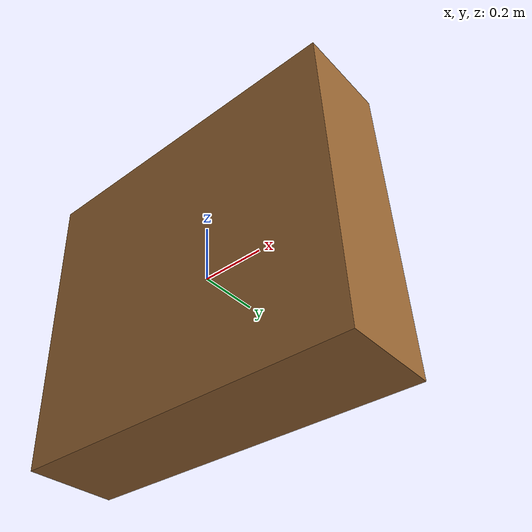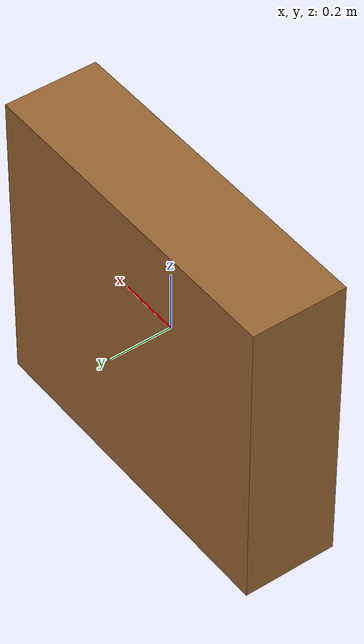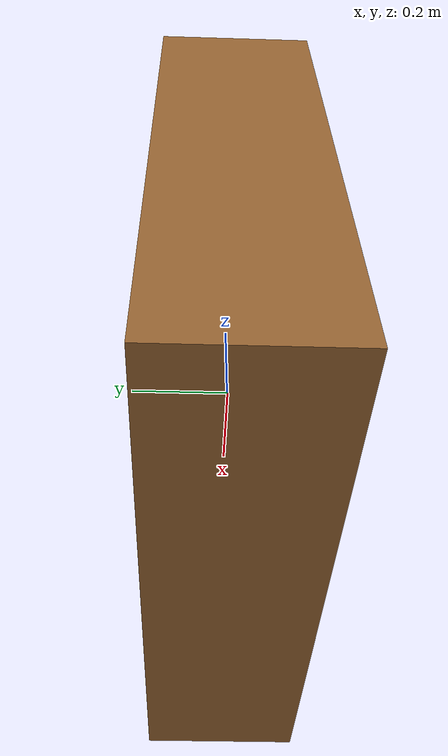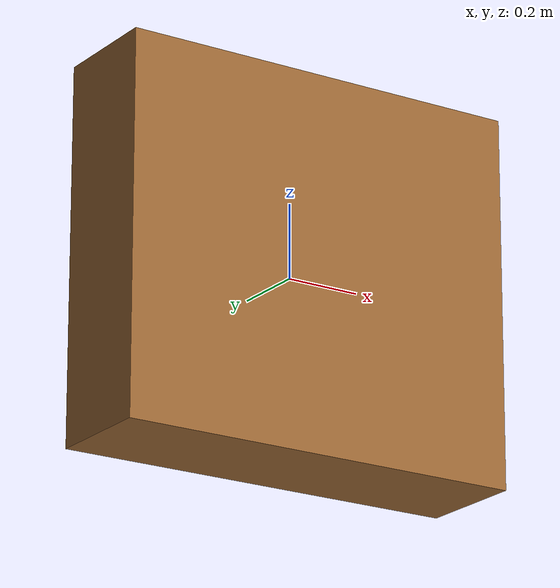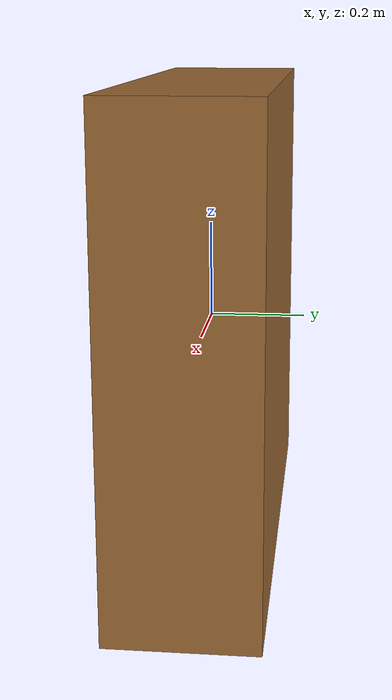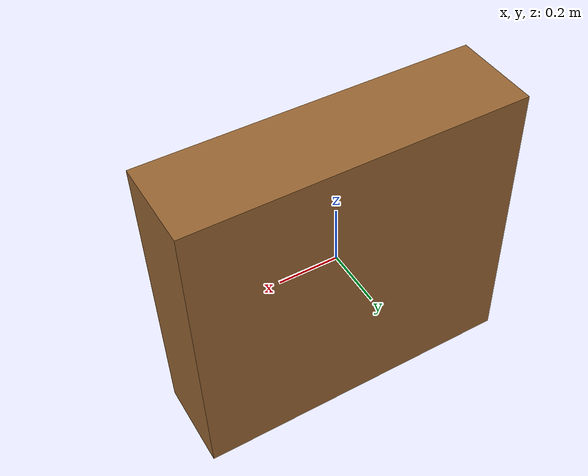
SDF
<?xml version="1.0"?>
<sdf version="1.6">
  <model name="front_door_plug">
    <static>true</static>
    <link name="plug">
      <collision name="c"><geometry><box><size>1.1 0.3 1.0</size></box></geometry></collision>
      <visual name="v"><geometry><box><size>1.1 0.3 1.0</size></box></geometry>
        <material><ambient>0.6 0.4 0.2 1</ambient><diffuse>0.6 0.4 0.2 1</diffuse></material>
      </visual>
    </link>
  </model>
</sdf>
